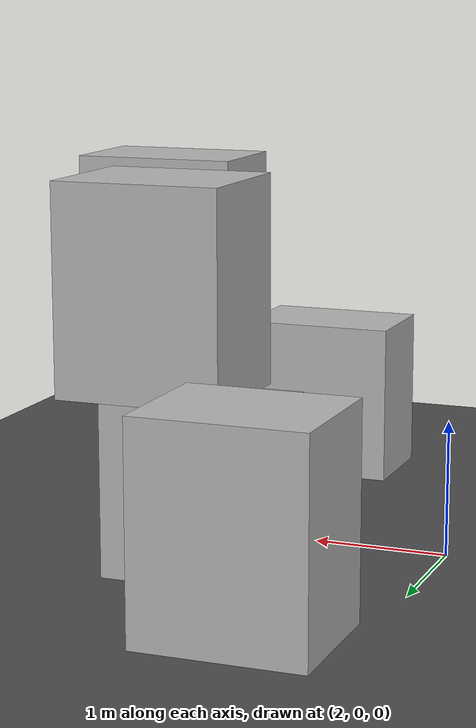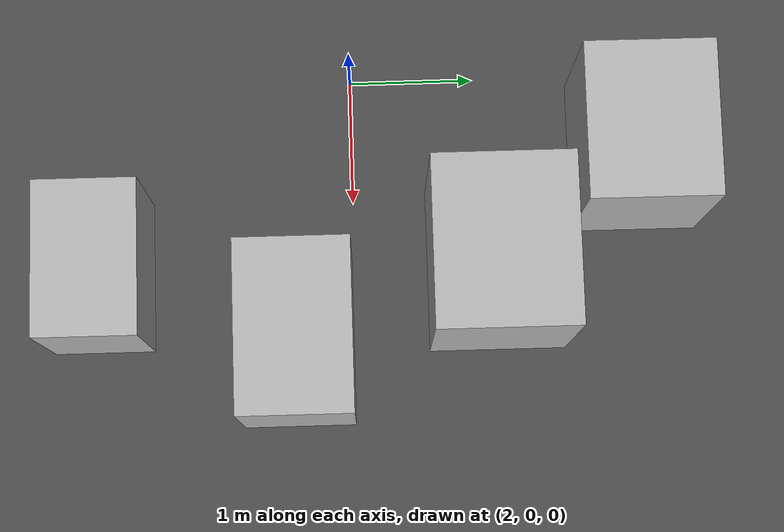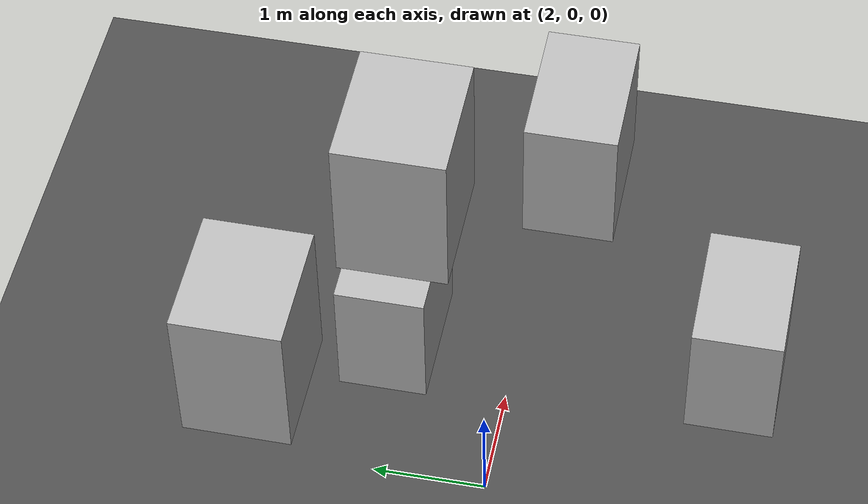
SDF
<sdf version="1.6">
 <world name="default">
  <light name="sun" type="directional">
   <pose>0 0 10 0 -0 0</pose>
   <diffuse>0.8 0.8 0.8 1</diffuse>
   <specular>0.2 0.2 0.2 1</specular>
   <attenuation>
    <range>1000</range>
    <constant>0.9</constant>
    <linear>0.01</linear>
    <quadratic>0.001</quadratic>
   </attenuation>
   <direction>-0.5 0.1 -0.9</direction>
  </light>
  <model name="ground_plane">
   <static>1</static>
   <link name="link">
    <collision name="collision">
     <geometry><plane><normal>0 0 1</normal><size>100 100</size></plane></geometry>
     <surface>
      <contact><collide_bitmask>65535</collide_bitmask></contact>
      <friction><ode><mu>100</mu><mu2>50</mu2></ode></friction>
     </surface>
    </collision>
    <visual name="visual">
     <cast_shadows>0</cast_shadows>
     <geometry><plane><normal>0 0 1</normal><size>100 100</size></plane></geometry>
     <material>
      <script><uri>file://media/materials/scripts/gazebo.material</uri><name>Gazebo/Grey</name></script>
     </material>
    </visual>
   </link>
  </model>
  <model name="asphalt_plane">
   <pose>0.236302 0.44076 0 0 -0 0</pose>
   <static>1</static>
   <link name="link">
    <collision name="collision"><geometry><box><size>200 200 0.1</size></box></geometry></collision>
    <visual name="visual">
     <cast_shadows>0</cast_shadows>
     <geometry><box><size>200 200 0.1</size></box></geometry>
     <material>
      <script>
       <uri>model://asphalt_plane/materials/scripts</uri>
       <uri>model://asphalt_plane/materials/textures</uri>
       <name>vrc/asphalt</name>
      </script>
     </material>
    </visual>
   </link>
  </model>
  <physics name="default_physics" default="0" type="ode">
   <ode>
    <solver>
     <type>quick</type>
     <iters>10</iters>
     <sor>1.3</sor>
     <use_dynamic_moi_rescaling>0</use_dynamic_moi_rescaling>
    </solver>
    <constraints>
     <cfm>0</cfm>
     <erp>0.2</erp>
     <contact_max_correcting_vel>100</contact_max_correcting_vel>
     <contact_surface_layer>0.001</contact_surface_layer>
    </constraints>
   </ode>
   <max_step_size>0.002</max_step_size>
   <real_time_factor>1</real_time_factor>
   <real_time_update_rate>500</real_time_update_rate>
  </physics>
  <gravity>0 0 -9.8066</gravity>
  <magnetic_field>6e-06 2.3e-05 -4.2e-05</magnetic_field>
  <atmosphere type="adiabatic"/>
  <scene><ambient>0.4 0.4 0.4 1</ambient><background>0.7 0.7 0.7 1</background><shadows>1</shadows></scene>
  <spherical_coordinates>
   <surface_model>EARTH_WGS84</surface_model>
   <latitude_deg>0</latitude_deg>
   <longitude_deg>0</longitude_deg>
   <elevation>0</elevation>
   <heading_deg>0</heading_deg>
  </spherical_coordinates>
  <model name="Big box 4">
   <pose>3.57801 -2.02292 0.674499 -2.2e-05 -0.00084 -0.001287</pose>
   <static>0</static>
   <link name="link">
    <inertial>
     <mass>40</mass>
     <inertia><ixx>1</ixx><ixy>0</ixy><ixz>0</ixz><iyy>1</iyy><iyz>0</iyz><izz>1</izz></inertia>
    </inertial>
    <collision name="collision">
     <geometry><box><size>1.2 0.8 1.25</size></box></geometry>
     <surface><contact><ode><max_vel>0.1</max_vel><min_depth>0.001</min_depth></ode></contact></surface>
    </collision>
    <visual name="visual">
     <geometry><mesh><uri>model://big_box4/meshes/big_box.dae</uri></mesh></geometry>
    </visual>
   </link>
  </model>
  <model name="Big box 4_0">
   <pose>3.45744 1.10223 0.674411 0.000726 -0.000247 -0.001371</pose>
   <static>0</static>
   <link name="link">
    <inertial>
     <mass>40</mass>
     <inertia><ixx>1</ixx><ixy>0</ixy><ixz>0</ixz><iyy>1</iyy><iyz>0</iyz><izz>1</izz></inertia>
    </inertial>
    <collision name="collision">
     <geometry><box><size>1.2 0.8 1.25</size></box></geometry>
     <surface><contact><ode><max_vel>0.1</max_vel><min_depth>0.001</min_depth></ode></contact></surface>
    </collision>
    <visual name="visual">
     <geometry><mesh><uri>model://big_box4/meshes/big_box.dae</uri></mesh></geometry>
    </visual>
   </link>
  </model>
  <model name="big_box3">
   <pose>4.30313 -0.409284 2.1739 -3.9e-05 1.8e-05 -9.6e-05</pose>
   <static>0</static>
   <link name="link">
    <inertial>
     <mass>40</mass>
     <inertia><ixx>1</ixx><ixy>0</ixy><ixz>0</ixz><iyy>1</iyy><iyz>0</iyz><izz>1</izz></inertia>
    </inertial>
    <collision name="collision">
     <geometry><box><size>1.2 0.8 1.25</size></box></geometry>
     <surface><contact><ode><max_vel>0.1</max_vel><min_depth>0.001</min_depth></ode></contact></surface>
    </collision>
    <visual name="visual">
     <geometry><mesh><uri>model://big_box3/meshes/big_box.dae</uri></mesh></geometry>
    </visual>
   </link>
  </model>
  <model name="Big box">
   <pose>2.69015 2.26538 0.799499 -3e-06 -0.000842 -0.003051</pose>
   <static>0</static>
   <link name="link">
    <inertial>
     <mass>40</mass>
     <inertia><ixx>1</ixx><ixy>0</ixy><ixz>0</ixz><iyy>1</iyy><iyz>0</iyz><izz>1</izz></inertia>
    </inertial>
    <collision name="collision">
     <geometry><box><size>1.2 0.8 1.5</size></box></geometry>
     <surface><contact><ode><max_vel>0.1</max_vel><min_depth>0.001</min_depth></ode></contact></surface>
    </collision>
    <visual name="visual"><geometry><mesh><uri>model://big_box/meshes/big_box.dae</uri></mesh></geometry></visual>
   </link>
  </model>
  <model name="Big box_0">
   <pose>3.76171 1.04665 2.04881 0.000925 0.000809 -0.000646</pose>
   <static>0</static>
   <link name="link">
    <inertial>
     <mass>40</mass>
     <inertia><ixx>1</ixx><ixy>0</ixy><ixz>0</ixz><iyy>1</iyy><iyz>0</iyz><izz>1</izz></inertia>
    </inertial>
    <collision name="collision">
     <geometry><box><size>1.2 0.8 1.5</size></box></geometry>
     <surface><contact><ode><max_vel>0.1</max_vel><min_depth>0.001</min_depth></ode></contact></surface>
    </collision>
    <visual name="visual"><geometry><mesh><uri>model://big_box/meshes/big_box.dae</uri></mesh></geometry></visual>
   </link>
  </model>
 </world>
</sdf>
